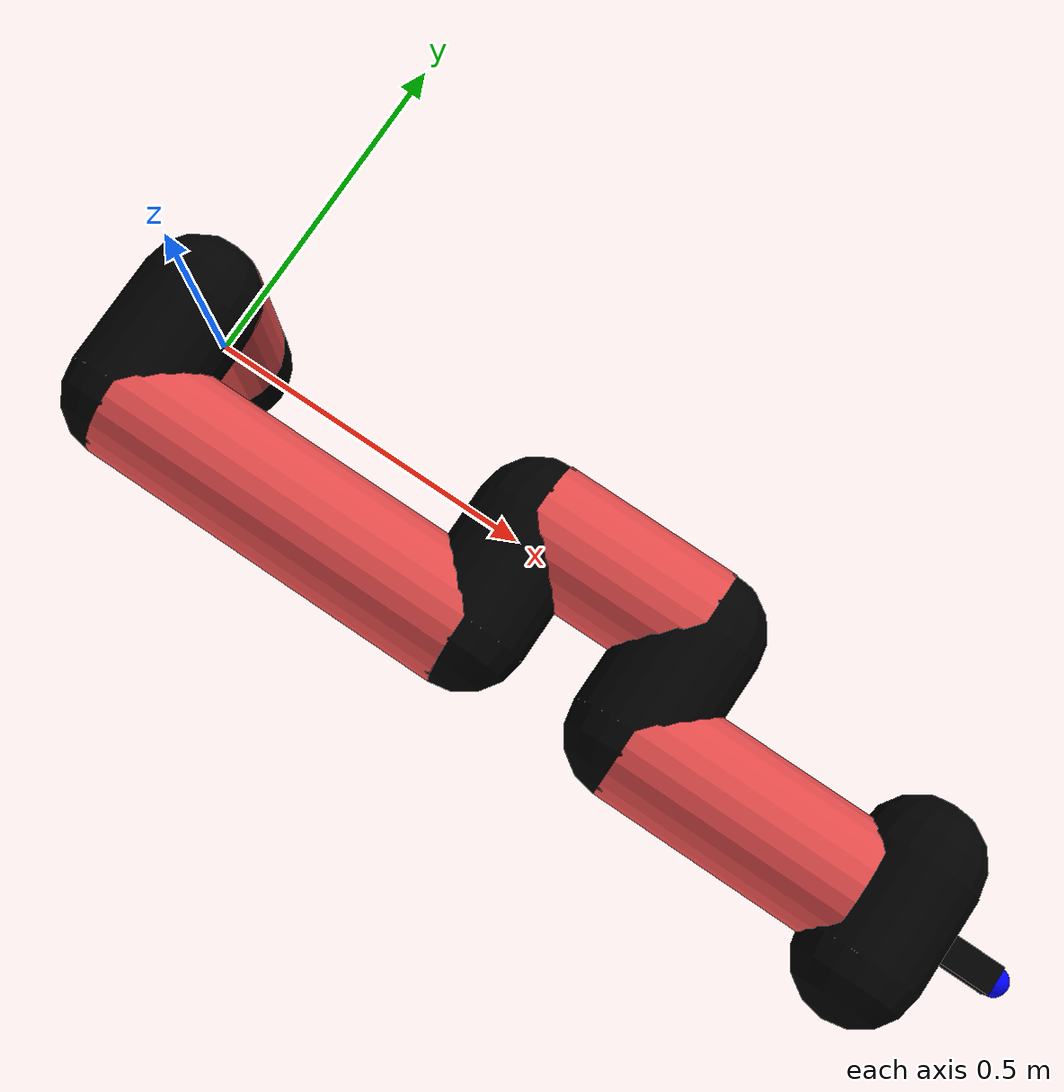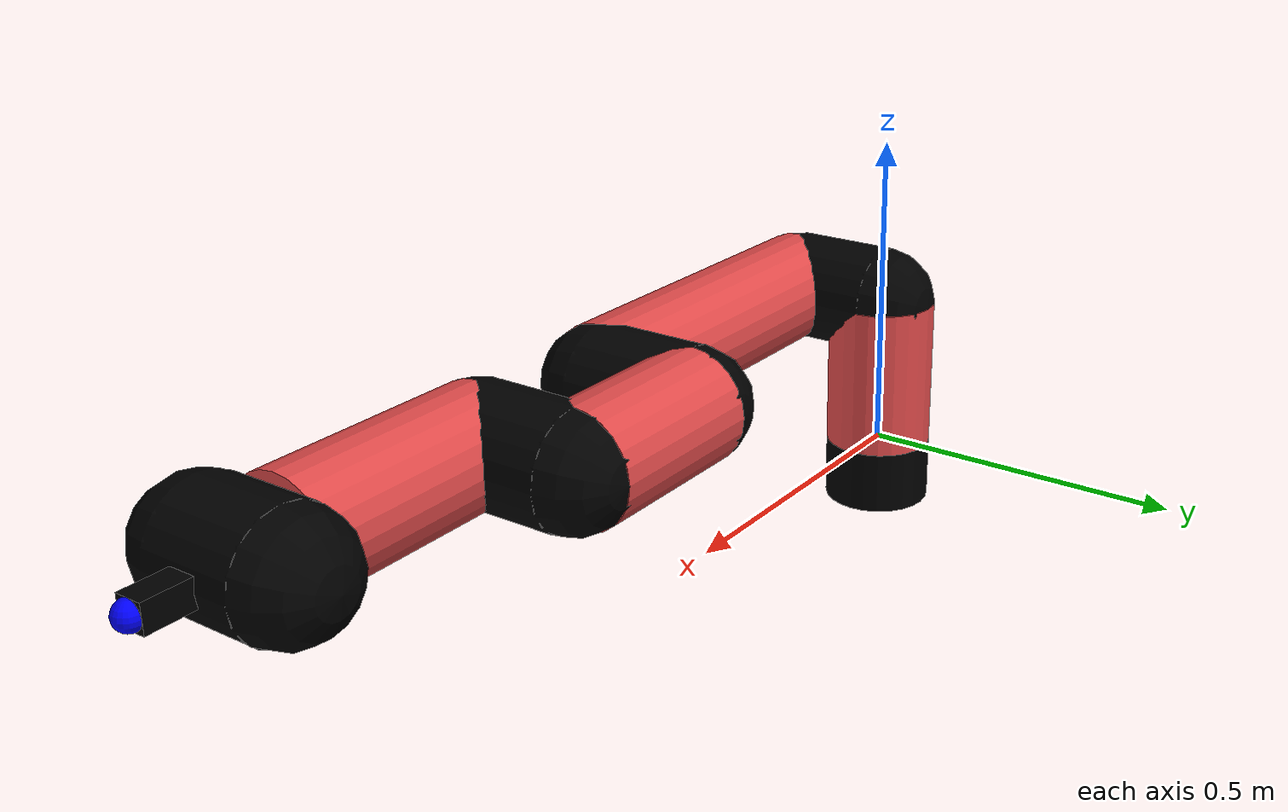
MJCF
<mujoco model="manipulator">
		<compiler angle="degree" coordinate="local" inertiafromgeom="auto" meshdir="meshes/"/>
		<option gravity="0 0 0" integrator="RK4" iterations="30" timestep="0.01"/>

		<default>
		<joint armature="1" limited="true" stiffness="10" damping="15" frictionloss="5.0"/>
		<geom conaffinity="1" condim="3" contype="1" friction=".5 .1 .1" margin="0.002"/>
		<motor ctrllimited="true"/>
		<position ctrllimited="true"/>
		</default>

		<asset>
		<texture builtin="gradient" height="100" rgb1="1.0 1.0 1.0" rgb2="1.0 1.0 1.0" type="skybox" width="100"/>
		<texture builtin="flat" height="32" name="arm_tex" rgb1="0.9 0.3 0.3" type="2d" width="32"/>
		<texture builtin="flat" height="32" name="gripper_tex" rgb1="0.0 0.0 0.0" type="cube" width="32"/>

		<material name="arm_mat" shininess="0.1" specular="0.1" texture="arm_tex"/>
		<material name="gripper_mat" shininess="1" specular="1" texture="gripper_tex"/>
		</asset>

		<worldbody>
		<light cutoff="45" diffuse=".8 .8 .8" dir="0 0.16 -1" directional="false" name="light" pos="0 -2.0 8.0" specular="0.3 0.3 0.3"/>

		<body name="base_link" pos="0 0 -0.1">
		<geom fromto="0 0 0 0 0 0.1" material="arm_mat" name="base_link" rgba="0.0 0.0 0.0 1" size="0.085" type="cylinder"/>
		</body>

		<body name="l1" pos="0 0 0">
<geom fromto="0 0 0 0 0 0.24" material="arm_mat" name="l1" rgba="0.9 0.3 0.3 1" size="0.085" type="cylinder"/>
<geom fromto="0 0 0.24 0 -0.16 0.24" material="arm_mat" name="l1_ex" rgba="0.0 0.0 0.0 1" size="0.085" type="capsule"/>
<joint axis="0 0 1" name="j1" pos="0 0 0" range="-90 90" damping="36.0" frictionloss="10.05"/>

<body name="l2" pos="0 -0.16 0.24">
<geom fromto="0 0 0 0.53 0 0" material="arm_mat" name="l2" rgba="0.9 0.3 0.3 1" size="0.085" type="cylinder"/>
<geom fromto="0.53 0 0 0.53 0.16 0" material="arm_mat" name="l2_ex" rgba="0.0 0.0 0.0 1" size="0.085" type="capsule"/>
<joint axis="-0.18 1.22 0.1" name="j2" pos="0 0 0" range="-90 60" damping="34.76" frictionloss="7.6"/>

<body name="l3" pos="0.53 0.16 0">
<geom fromto="0 0 0 0.25 0 0" material="arm_mat" name="l3" rgba="0.9 0.3 0.3 1" size="0.085" type="cylinder"/>
<geom fromto="0.25 0 0 0.25 -0.16 0" material="arm_mat" name="l3_ex" rgba="0.0 0.0 0.0 1" size="0.085" type="capsule"/>
<joint axis="-0.22 1.13 0.13" name="j3" pos="0 0 0" range="-30 60" damping="33.28" frictionloss="8.3"/>

<body name="l4" pos="0.25 -0.16 0">
<geom fromto="0 0 0 0.33 0 0" material="arm_mat" name="l4" rgba="0.9 0.3 0.3 1" size="0.085" type="cylinder"/>
<joint axis="0.21 1.11 -0.19" name="j4" pos="0 0 0" range="-30 60" damping="30.67" frictionloss="8.6"/>

<body name="gripper" pos="0.33 0 0">
<geom fromto="0.05 -0.07 0 0.05 0.07 0" material="gripper_mat" name="gripper" rgba="0.0 0.0 0.0 1" size="0.085" type="capsule"/><joint axis="1 0 0" name="j5" pos="0 0 0" range="-90 90" damping="15" frictionloss="5.0"/><body name="finger" pos="0.1 0 0">
<geom fromto="0 0.0 0 0.1 0.0 0" material="gripper_mat" name="finger" rgba="0.0 0.0 0.0 1" size="0.020 0.06 0.06" type="box"/>
</body>
<site name="current" pos="0.2 0. 0.0" rgba="0. 0. 1.0 1" size="0.02" type="sphere"/>
</body>
</body>
</body>
</body>
</body>
</worldbody>
<actuator>
<motor ctrllimited="true" ctrlrange="-1.0 1.0" joint="j1" gear="68.36"/>
<motor ctrllimited="true" ctrlrange="-1.0 1.0" joint="j2" gear="60.71"/>
<motor ctrllimited="true" ctrlrange="-1.0 1.0" joint="j3" gear="88.18"/>
<motor ctrllimited="true" ctrlrange="-1.0 1.0" joint="j4" gear="99.02"/>
<motor ctrllimited="true" ctrlrange="-1.0 1.0" joint="j5" gear="80"/>
</actuator>
</mujoco>
